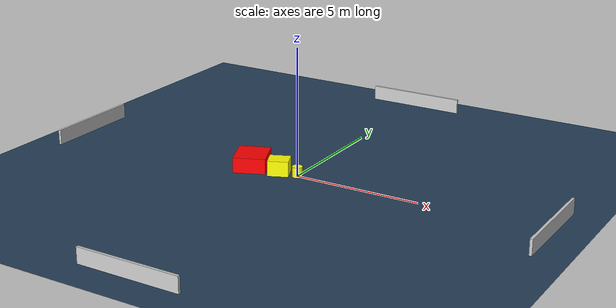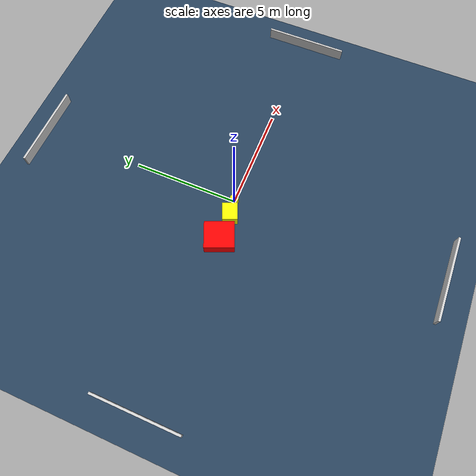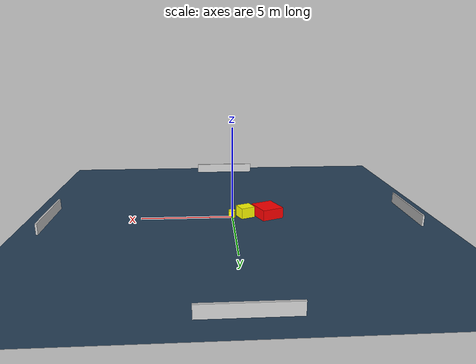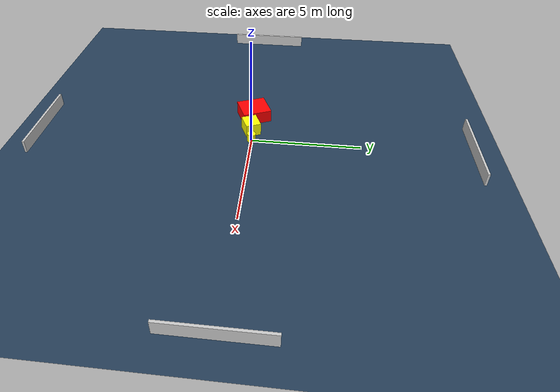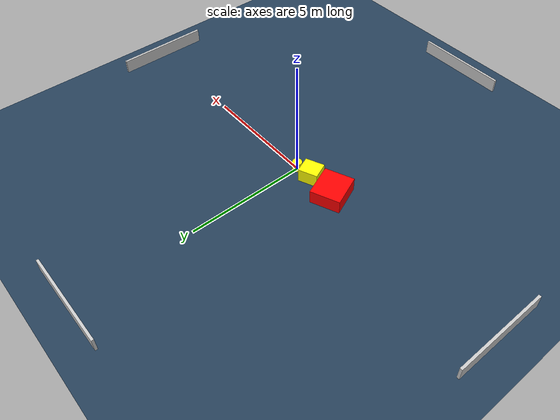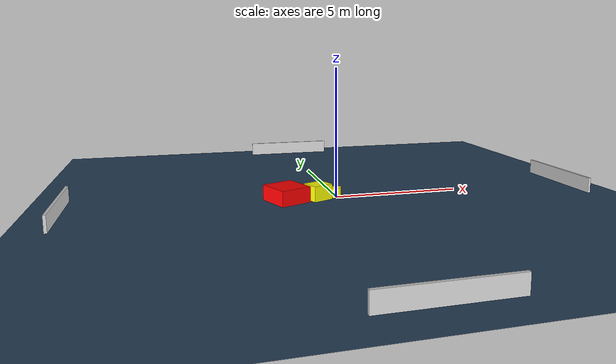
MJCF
<?xml version="1.0" ?>
<mujoco model="generated_environment">
  <option timestep="0.01" integrator="RK4" cone="elliptic"/>
  <default>
    <geom density="1"/>
  </default>
  <asset>
    <texture builtin="gradient" height="3072" name="skybox" rgb1="0.3 0.5 0.7" rgb2="0 0 0" type="skybox" width="512"/>
    <texture builtin="checker" height="300" name="groundplane" rgb1="0.2 0.3 0.4" rgb2="0.1 0.2 0.3" type="2d" width="300"/>
    <material name="groundplane" reflectance="0.2" texrepeat="5 5" texture="groundplane"/>
  </asset>
  <worldbody>
    <light dir="0 0 -1" directional="true" pos="0 0 1.5"/>
    <geom condim="3" friction="0.5 0.005 0.001" material="groundplane" name="floor" pos="0 0 0" size="0 0 0.05" type="plane"/>
    <body name="walls">
      <geom name="wall_1" condim="4" pos="-10.0 0.0 0.3" rgba="0.800000011920929 0.800000011920929 0.800000011920929 1.0" size="0.05 2.0 0.3" type="box"/>
      <geom name="wall_2" condim="4" pos="10.0 0.0 0.3" rgba="0.800000011920929 0.800000011920929 0.800000011920929 1.0" size="0.05 2.0 0.3" type="box"/>
      <geom name="wall_3" condim="4" pos="0.0 -10.0 0.3" rgba="0.800000011920929 0.800000011920929 0.800000011920929 1.0" size="2.0 0.05 0.3" type="box"/>
      <geom name="wall_4" condim="4" pos="0.0 10.0 0.3" rgba="0.800000011920929 0.800000011920929 0.800000011920929 1.0" size="2.0 0.05 0.3" type="box"/>
    </body>
    <body name="robot">
      <joint name="joint_x" type="slide" pos="0 0 0" axis="1 0 0"/>
      <joint name="joint_y" type="slide" pos="0 0 0" axis="0 1 0"/>
      <geom name="robot" type="cylinder" pos="0.0 0.0 0.2" size="0.2 0.2 0.0" mass="5.0" friction="1.0 0.005 0.0001" condim="4" rgba="1.0 1.0 0.0 1.0"/>
    </body>
    <body name="obstacle_1_movable">
      <geom name="obstacle_1_movable" condim="4" pos="-0.7478913249196426 -0.09579270834344357 0.3" euler="0 0 203.39426226727136" friction="0.0 0.005 0.001" rgba="1.0 1.0 0.0 1.0" size="0.4033703085858465 0.351570015838295 0.3" type="box" mass="0.1"/>
      <joint type="free"/>
    </body>
    <body name="obstacle_2_static">
      <geom name="obstacle_2_static" condim="4" pos="-1.9721825284424945 -0.08970489869595823 0.3" euler="0 0 112.77340203378398" friction="0.0 0.005 0.001" rgba="1.0 0.0 0.0 1.0" size="0.6842164398170867 0.6228258619706907 0.3" type="box"/>
    </body>
  </worldbody>
  <actuator>
    <motor name="actuator_x" joint="joint_x" gear="1" ctrlrange="-1 1"/>
    <motor name="actuator_y" joint="joint_y" gear="1" ctrlrange="-1 1"/>
  </actuator>
</mujoco>
